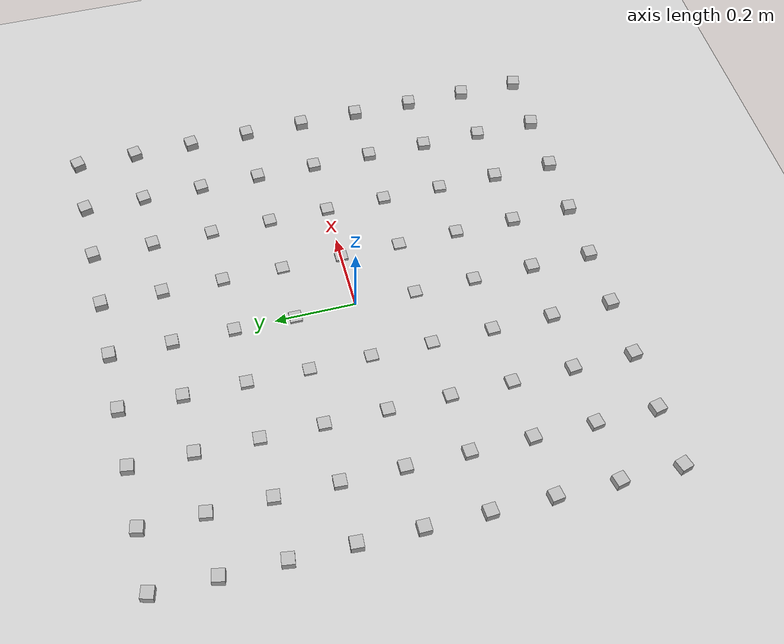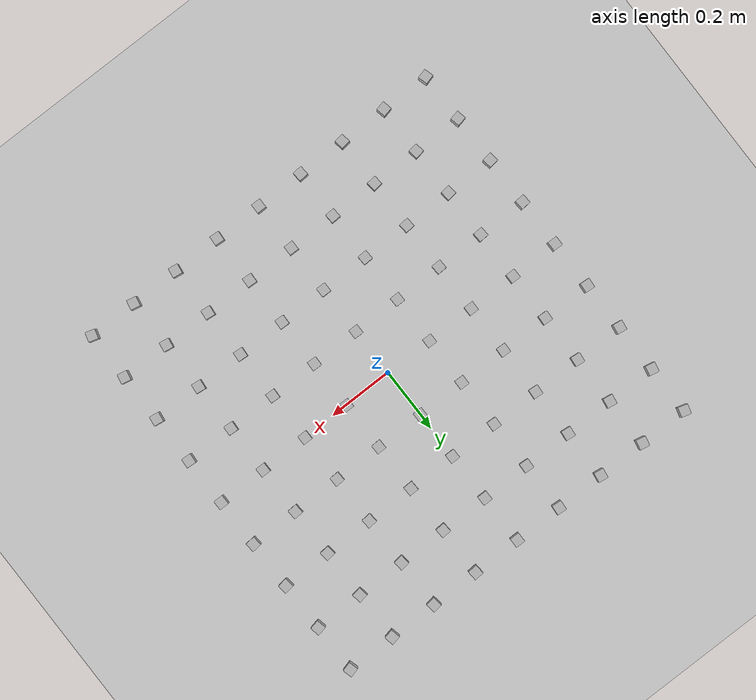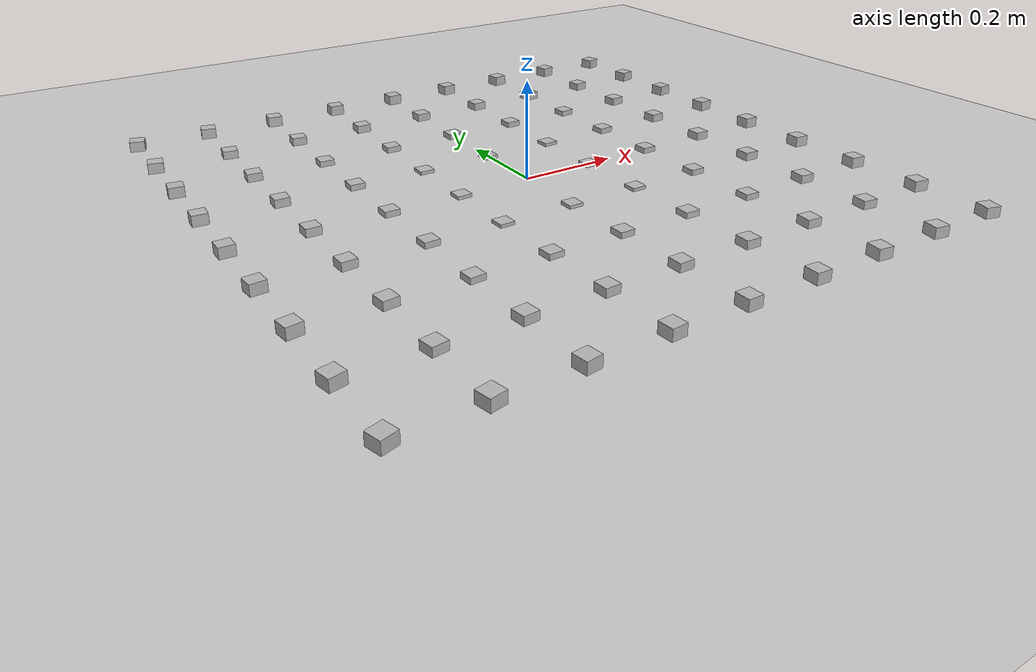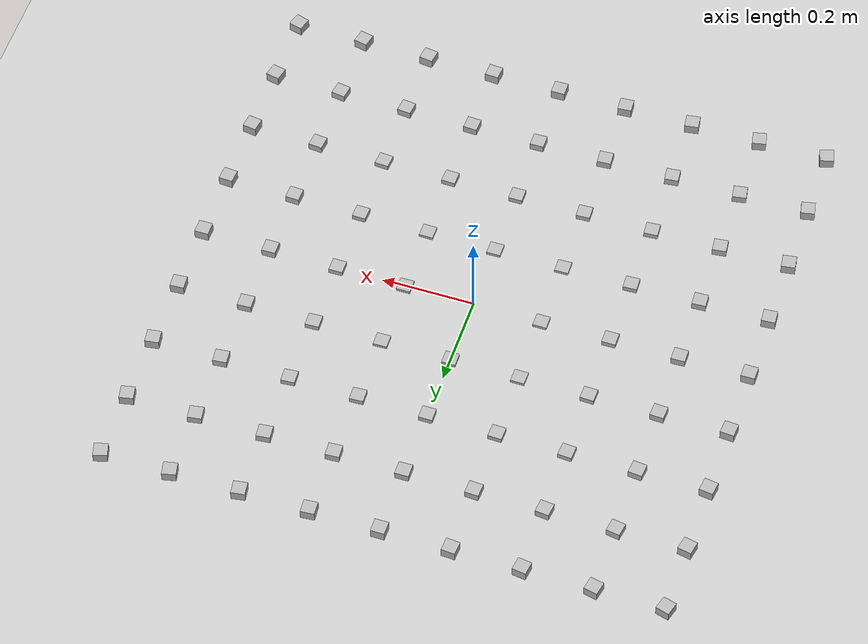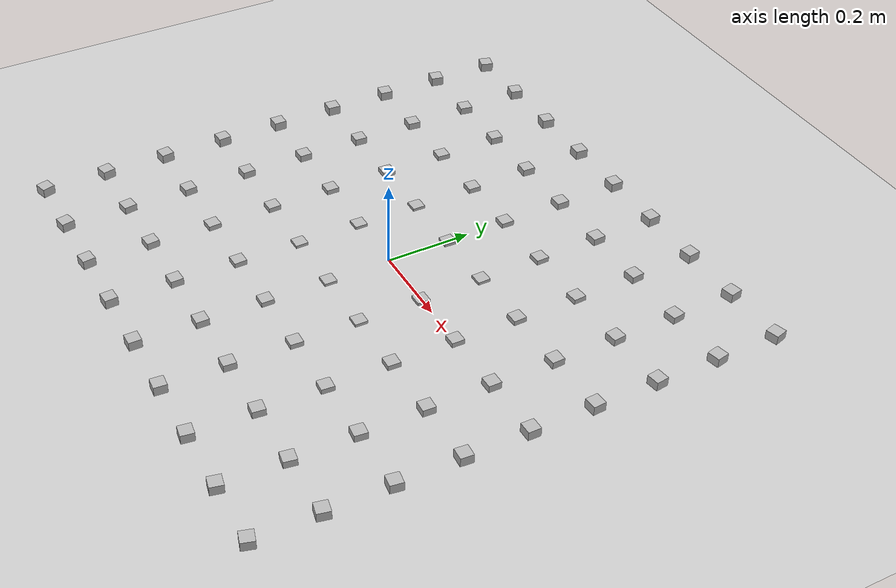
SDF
<?xml version="1.0" ?>
<sdf version="1.5">
  <world name="default">
      <scene>
        <origin_visual>0</origin_visual>
        <grid>0</grid>
    </scene>
    <physics type="ode">
      <max_step_size>0.003</max_step_size>
      <real_time_update_rate>999</real_time_update_rate>

      <ode>
        <constraints>
          <!-- In Robogen: Simulator.cpp -->
          <erp>0.1</erp>
          <cfm>10e-6</cfm>

          <!-- Making this smaller seems to decrease rather than increase stability. -->
          <contact_max_correcting_vel>100</contact_max_correcting_vel>
          <contact_surface_layer>1e-8</contact_surface_layer>
        </constraints>
        <solver>
          <type>world</type>
        </solver>
      </ode>
    </physics>

    <!-- A global light source -->
    <include>
      <uri>model://sun</uri>
    </include>
    <include>
      <uri>model://tol_ground</uri>
    </include>
    <include>
      <uri>model://obstacles</uri>
    </include>

    <gui fullscreen='0'>
      <camera name='user_camera'>
        <pose frame=''>0.407182 -0.446632 1.00088 0 1.06364 2.56819</pose>
        <view_controller>orbit</view_controller>
        <projection_type>perspective</projection_type>
      </camera>
    </gui>

    <plugin name="tol-control" filename="libtolworldcontrol.so" />
  </world>
</sdf>

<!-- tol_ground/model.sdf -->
<sdf version="1.5">
<!-- Custom ground plane -->
  <model name="tol_ground">
    <static>true</static>
    <link name="link">
      <collision name="collision">
        <geometry>
          <plane>
            <normal>0 0 1</normal>
            <size>100 100</size>
          </plane>
        </geometry>
        <surface>
          <friction>
            <ode>
              <!-- RobogenCollision.cpp -->
              <mu>1</mu>
              <mu2>1</mu2>
              <slip1>0.01</slip1>
              <slip2>0.01</slip2>
            </ode>
          </friction>
          <contact>
            <ode>
              <kd>9.000000e+04</kd>
              <kp>2.000000e+06</kp>
            </ode>
          </contact>
        </surface>
      </collision>
      <visual name="visual">
        <cast_shadows>false</cast_shadows>
        <geometry>
          <plane>
            <normal>0 0 1</normal>
            <size>100 100</size>
          </plane>
        </geometry>
        <material>
          <script>
            <uri>model://tol_ground/materials/scripts</uri>
            <uri>model://tol_ground/materials/textures</uri>
            <name>Floor/Tiles</name>
          </script>
        </material>
      </visual>
    </link>
  </model>
<!-- END Custom ground plane -->
</sdf>
